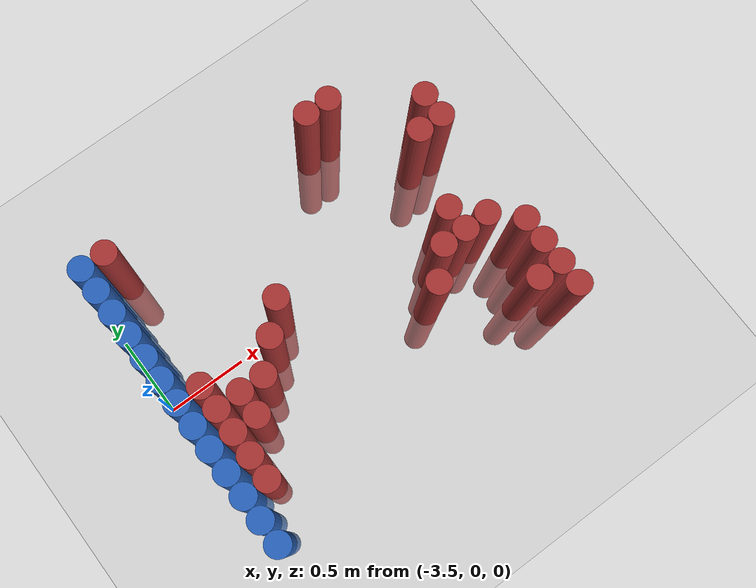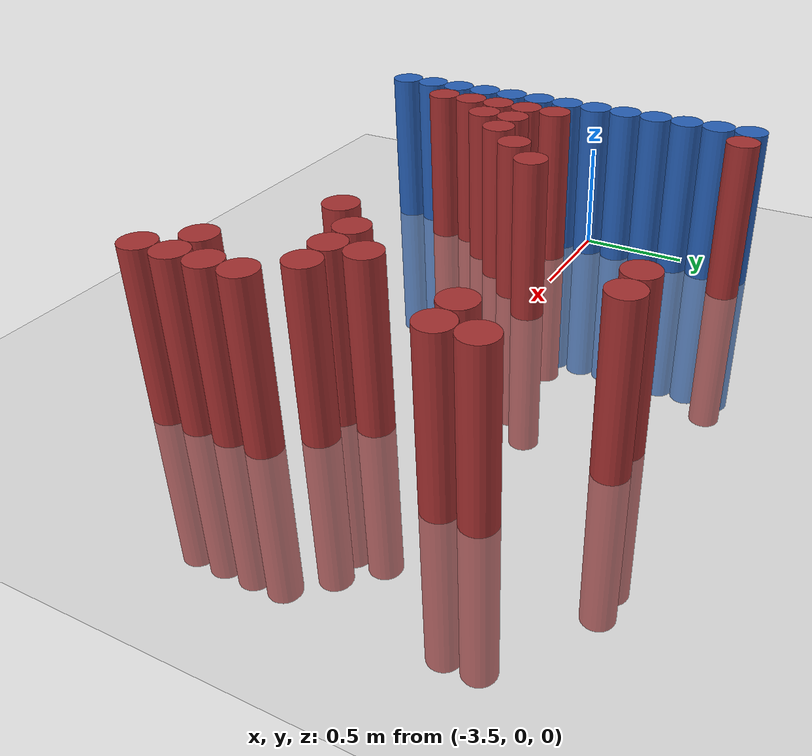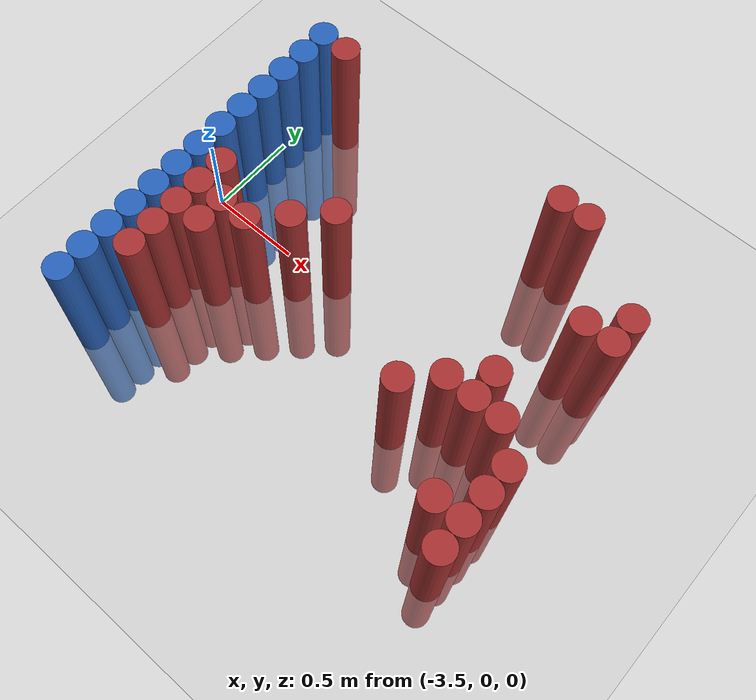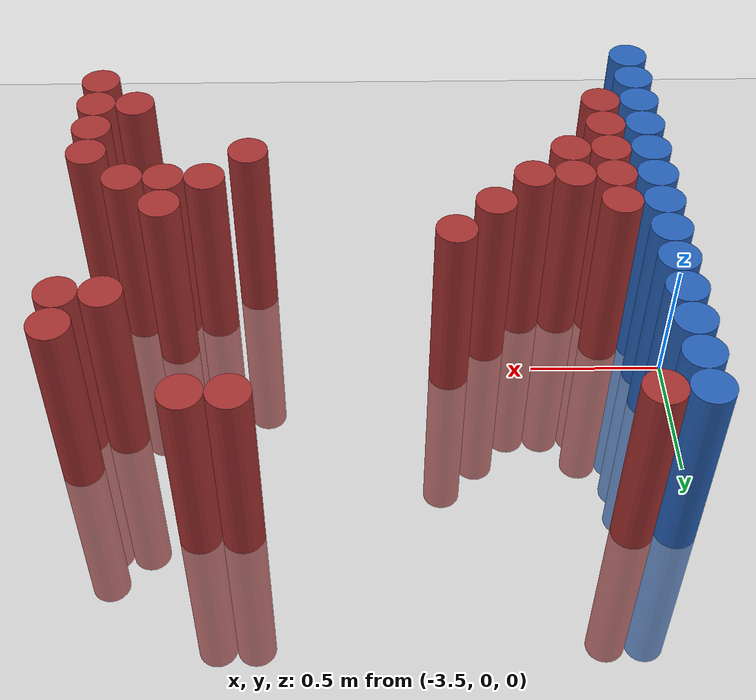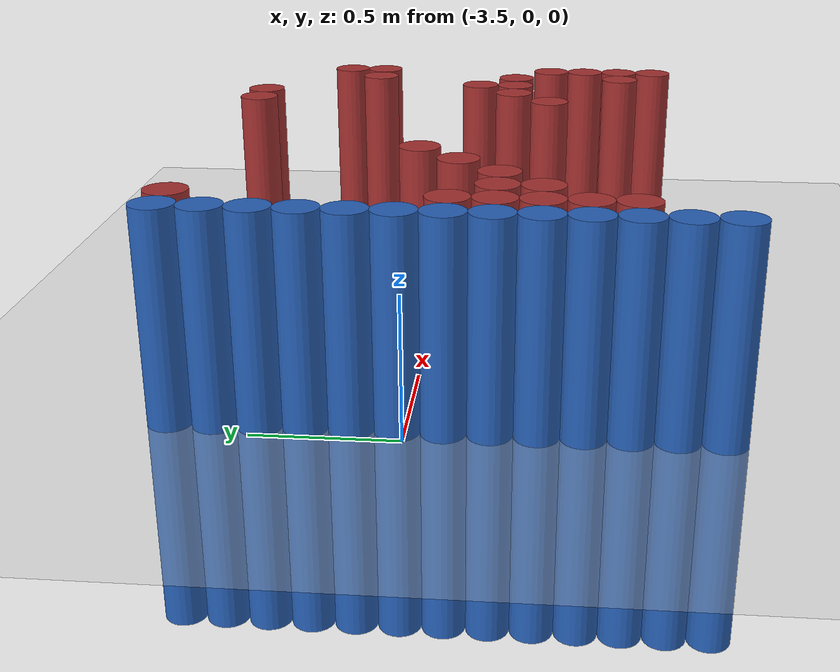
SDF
<sdf version="1.6">
 <world name="default">
  <model name="ground_plane">
   <static>1</static>
   <link name="link">
    <collision name="collision">
     <geometry><plane><normal>0 0 1</normal><size>100 100</size></plane></geometry>
     <surface><friction><ode><mu>100</mu><mu2>50</mu2></ode></friction></surface>
    </collision>
    <visual name="visual">
     <cast_shadows>0</cast_shadows>
     <geometry><plane><normal>0 0 1</normal><size>100 100</size></plane></geometry>
     <material>
      <script><uri>file://media/materials/scripts/gazebo.material</uri><name>Gazebo/Grey</name></script>
     </material>
    </visual>
   </link>
  </model>
  <model name="unit_cylinder_103">
   <static>1</static>
   <pose>-3.425000 -0.875000 0.000000 0.000000 0.000000 0.000000</pose>
   <link name="link">
    <inertial>
     <mass>1</mass>
     <inertia><ixx>0.145833</ixx><ixy>0</ixy><ixz>0</ixz><iyy>0.145833</iyy><iyz>0</iyz><izz>0.125</izz></inertia>
    </inertial>
    <collision name="collision">
     <geometry><cylinder><radius>0.075000</radius><length>1.5</length></cylinder></geometry>
    </collision>
    <visual name="visual">
     <geometry><cylinder><radius>0.075000</radius><length>1.5</length></cylinder></geometry>
     <material>
      <ambient>0.152000 0.379000 0.720000 1</ambient>
      <diffuse>0.152000 0.379000 0.720000 1</diffuse>
     </material>
     <material>
      <script><name>Gazebo/Grey</name><uri>file://media/materials/scripts/gazebo.material</uri></script>
     </material>
    </visual>
   </link>
  </model>
  <model name="unit_cylinder_105">
   <static>1</static>
   <pose>-3.425000 -0.725000 0.000000 0.000000 0.000000 0.000000</pose>
   <link name="link">
    <inertial>
     <mass>1</mass>
     <inertia><ixx>0.145833</ixx><ixy>0</ixy><ixz>0</ixz><iyy>0.145833</iyy><iyz>0</iyz><izz>0.125</izz></inertia>
    </inertial>
    <collision name="collision">
     <geometry><cylinder><radius>0.075000</radius><length>1.5</length></cylinder></geometry>
    </collision>
    <visual name="visual">
     <geometry><cylinder><radius>0.075000</radius><length>1.5</length></cylinder></geometry>
     <material>
      <ambient>0.152000 0.379000 0.720000 1</ambient>
      <diffuse>0.152000 0.379000 0.720000 1</diffuse>
     </material>
     <material>
      <script><name>Gazebo/Grey</name><uri>file://media/materials/scripts/gazebo.material</uri></script>
     </material>
    </visual>
   </link>
  </model>
  <model name="unit_cylinder_107">
   <static>1</static>
   <pose>-3.425000 -0.575000 0.000000 0.000000 0.000000 0.000000</pose>
   <link name="link">
    <inertial>
     <mass>1</mass>
     <inertia><ixx>0.145833</ixx><ixy>0</ixy><ixz>0</ixz><iyy>0.145833</iyy><iyz>0</iyz><izz>0.125</izz></inertia>
    </inertial>
    <collision name="collision">
     <geometry><cylinder><radius>0.075000</radius><length>1.5</length></cylinder></geometry>
    </collision>
    <visual name="visual">
     <geometry><cylinder><radius>0.075000</radius><length>1.5</length></cylinder></geometry>
     <material>
      <ambient>0.152000 0.379000 0.720000 1</ambient>
      <diffuse>0.152000 0.379000 0.720000 1</diffuse>
     </material>
     <material>
      <script><name>Gazebo/Grey</name><uri>file://media/materials/scripts/gazebo.material</uri></script>
     </material>
    </visual>
   </link>
  </model>
  <model name="unit_cylinder_109">
   <static>1</static>
   <pose>-3.425000 -0.425000 0.000000 0.000000 0.000000 0.000000</pose>
   <link name="link">
    <inertial>
     <mass>1</mass>
     <inertia><ixx>0.145833</ixx><ixy>0</ixy><ixz>0</ixz><iyy>0.145833</iyy><iyz>0</iyz><izz>0.125</izz></inertia>
    </inertial>
    <collision name="collision">
     <geometry><cylinder><radius>0.075000</radius><length>1.5</length></cylinder></geometry>
    </collision>
    <visual name="visual">
     <geometry><cylinder><radius>0.075000</radius><length>1.5</length></cylinder></geometry>
     <material>
      <ambient>0.152000 0.379000 0.720000 1</ambient>
      <diffuse>0.152000 0.379000 0.720000 1</diffuse>
     </material>
     <material>
      <script><name>Gazebo/Grey</name><uri>file://media/materials/scripts/gazebo.material</uri></script>
     </material>
    </visual>
   </link>
  </model>
  <model name="unit_cylinder_111">
   <static>1</static>
   <pose>-3.425000 -0.275000 0.000000 0.000000 0.000000 0.000000</pose>
   <link name="link">
    <inertial>
     <mass>1</mass>
     <inertia><ixx>0.145833</ixx><ixy>0</ixy><ixz>0</ixz><iyy>0.145833</iyy><iyz>0</iyz><izz>0.125</izz></inertia>
    </inertial>
    <collision name="collision">
     <geometry><cylinder><radius>0.075000</radius><length>1.5</length></cylinder></geometry>
    </collision>
    <visual name="visual">
     <geometry><cylinder><radius>0.075000</radius><length>1.5</length></cylinder></geometry>
     <material>
      <ambient>0.152000 0.379000 0.720000 1</ambient>
      <diffuse>0.152000 0.379000 0.720000 1</diffuse>
     </material>
     <material>
      <script><name>Gazebo/Grey</name><uri>file://media/materials/scripts/gazebo.material</uri></script>
     </material>
    </visual>
   </link>
  </model>
  <model name="unit_cylinder_113">
   <static>1</static>
   <pose>-3.425000 -0.125000 0.000000 0.000000 0.000000 0.000000</pose>
   <link name="link">
    <inertial>
     <mass>1</mass>
     <inertia><ixx>0.145833</ixx><ixy>0</ixy><ixz>0</ixz><iyy>0.145833</iyy><iyz>0</iyz><izz>0.125</izz></inertia>
    </inertial>
    <collision name="collision">
     <geometry><cylinder><radius>0.075000</radius><length>1.5</length></cylinder></geometry>
    </collision>
    <visual name="visual">
     <geometry><cylinder><radius>0.075000</radius><length>1.5</length></cylinder></geometry>
     <material>
      <ambient>0.152000 0.379000 0.720000 1</ambient>
      <diffuse>0.152000 0.379000 0.720000 1</diffuse>
     </material>
     <material>
      <script><name>Gazebo/Grey</name><uri>file://media/materials/scripts/gazebo.material</uri></script>
     </material>
    </visual>
   </link>
  </model>
  <model name="unit_cylinder_115">
   <static>1</static>
   <pose>-3.425000 0.025000 0.000000 0.000000 0.000000 0.000000</pose>
   <link name="link">
    <inertial>
     <mass>1</mass>
     <inertia><ixx>0.145833</ixx><ixy>0</ixy><ixz>0</ixz><iyy>0.145833</iyy><iyz>0</iyz><izz>0.125</izz></inertia>
    </inertial>
    <collision name="collision">
     <geometry><cylinder><radius>0.075000</radius><length>1.5</length></cylinder></geometry>
    </collision>
    <visual name="visual">
     <geometry><cylinder><radius>0.075000</radius><length>1.5</length></cylinder></geometry>
     <material>
      <ambient>0.152000 0.379000 0.720000 1</ambient>
      <diffuse>0.152000 0.379000 0.720000 1</diffuse>
     </material>
     <material>
      <script><name>Gazebo/Grey</name><uri>file://media/materials/scripts/gazebo.material</uri></script>
     </material>
    </visual>
   </link>
  </model>
  <model name="unit_cylinder_117">
   <static>1</static>
   <pose>-3.425000 0.175000 0.000000 0.000000 0.000000 0.000000</pose>
   <link name="link">
    <inertial>
     <mass>1</mass>
     <inertia><ixx>0.145833</ixx><ixy>0</ixy><ixz>0</ixz><iyy>0.145833</iyy><iyz>0</iyz><izz>0.125</izz></inertia>
    </inertial>
    <collision name="collision">
     <geometry><cylinder><radius>0.075000</radius><length>1.5</length></cylinder></geometry>
    </collision>
    <visual name="visual">
     <geometry><cylinder><radius>0.075000</radius><length>1.5</length></cylinder></geometry>
     <material>
      <ambient>0.152000 0.379000 0.720000 1</ambient>
      <diffuse>0.152000 0.379000 0.720000 1</diffuse>
     </material>
     <material>
      <script><name>Gazebo/Grey</name><uri>file://media/materials/scripts/gazebo.material</uri></script>
     </material>
    </visual>
   </link>
  </model>
  <model name="unit_cylinder_119">
   <static>1</static>
   <pose>-3.425000 0.325000 0.000000 0.000000 0.000000 0.000000</pose>
   <link name="link">
    <inertial>
     <mass>1</mass>
     <inertia><ixx>0.145833</ixx><ixy>0</ixy><ixz>0</ixz><iyy>0.145833</iyy><iyz>0</iyz><izz>0.125</izz></inertia>
    </inertial>
    <collision name="collision">
     <geometry><cylinder><radius>0.075000</radius><length>1.5</length></cylinder></geometry>
    </collision>
    <visual name="visual">
     <geometry><cylinder><radius>0.075000</radius><length>1.5</length></cylinder></geometry>
     <material>
      <ambient>0.152000 0.379000 0.720000 1</ambient>
      <diffuse>0.152000 0.379000 0.720000 1</diffuse>
     </material>
     <material>
      <script><name>Gazebo/Grey</name><uri>file://media/materials/scripts/gazebo.material</uri></script>
     </material>
    </visual>
   </link>
  </model>
  <model name="unit_cylinder_121">
   <static>1</static>
   <pose>-3.425000 0.475000 0.000000 0.000000 0.000000 0.000000</pose>
   <link name="link">
    <inertial>
     <mass>1</mass>
     <inertia><ixx>0.145833</ixx><ixy>0</ixy><ixz>0</ixz><iyy>0.145833</iyy><iyz>0</iyz><izz>0.125</izz></inertia>
    </inertial>
    <collision name="collision">
     <geometry><cylinder><radius>0.075000</radius><length>1.5</length></cylinder></geometry>
    </collision>
    <visual name="visual">
     <geometry><cylinder><radius>0.075000</radius><length>1.5</length></cylinder></geometry>
     <material>
      <ambient>0.152000 0.379000 0.720000 1</ambient>
      <diffuse>0.152000 0.379000 0.720000 1</diffuse>
     </material>
     <material>
      <script><name>Gazebo/Grey</name><uri>file://media/materials/scripts/gazebo.material</uri></script>
     </material>
    </visual>
   </link>
  </model>
  <model name="unit_cylinder_123">
   <static>1</static>
   <pose>-3.425000 0.625000 0.000000 0.000000 0.000000 0.000000</pose>
   <link name="link">
    <inertial>
     <mass>1</mass>
     <inertia><ixx>0.145833</ixx><ixy>0</ixy><ixz>0</ixz><iyy>0.145833</iyy><iyz>0</iyz><izz>0.125</izz></inertia>
    </inertial>
    <collision name="collision">
     <geometry><cylinder><radius>0.075000</radius><length>1.5</length></cylinder></geometry>
    </collision>
    <visual name="visual">
     <geometry><cylinder><radius>0.075000</radius><length>1.5</length></cylinder></geometry>
     <material>
      <ambient>0.152000 0.379000 0.720000 1</ambient>
      <diffuse>0.152000 0.379000 0.720000 1</diffuse>
     </material>
     <material>
      <script><name>Gazebo/Grey</name><uri>file://media/materials/scripts/gazebo.material</uri></script>
     </material>
    </visual>
   </link>
  </model>
  <model name="unit_cylinder_125">
   <static>1</static>
   <pose>-3.425000 0.775000 0.000000 0.000000 0.000000 0.000000</pose>
   <link name="link">
    <inertial>
     <mass>1</mass>
     <inertia><ixx>0.145833</ixx><ixy>0</ixy><ixz>0</ixz><iyy>0.145833</iyy><iyz>0</iyz><izz>0.125</izz></inertia>
    </inertial>
    <collision name="collision">
     <geometry><cylinder><radius>0.075000</radius><length>1.5</length></cylinder></geometry>
    </collision>
    <visual name="visual">
     <geometry><cylinder><radius>0.075000</radius><length>1.5</length></cylinder></geometry>
     <material>
      <ambient>0.152000 0.379000 0.720000 1</ambient>
      <diffuse>0.152000 0.379000 0.720000 1</diffuse>
     </material>
     <material>
      <script><name>Gazebo/Grey</name><uri>file://media/materials/scripts/gazebo.material</uri></script>
     </material>
    </visual>
   </link>
  </model>
  <model name="unit_cylinder_214">
   <static>1</static>
   <pose>-3.425000 -1.025000 0.000000 0.000000 0.000000 0.000000</pose>
   <link name="link">
    <inertial>
     <mass>1</mass>
     <inertia><ixx>0.145833</ixx><ixy>0</ixy><ixz>0</ixz><iyy>0.145833</iyy><iyz>0</iyz><izz>0.125</izz></inertia>
    </inertial>
    <collision name="collision">
     <geometry><cylinder><radius>0.075000</radius><length>1.5</length></cylinder></geometry>
    </collision>
    <visual name="visual">
     <geometry><cylinder><radius>0.075000</radius><length>1.5</length></cylinder></geometry>
     <material>
      <ambient>0.152000 0.379000 0.720000 1</ambient>
      <diffuse>0.152000 0.379000 0.720000 1</diffuse>
     </material>
     <material>
      <script><name>Gazebo/Grey</name><uri>file://media/materials/scripts/gazebo.material</uri></script>
     </material>
    </visual>
   </link>
  </model>
  <model name="unit_cylinder_215">
   <static>1</static>
   <pose>-3.425000 -0.875000 0.000000 0.000000 0.000000 0.000000</pose>
   <link name="link">
    <inertial>
     <mass>1</mass>
     <inertia><ixx>0.145833</ixx><ixy>0</ixy><ixz>0</ixz><iyy>0.145833</iyy><iyz>0</iyz><izz>0.125</izz></inertia>
    </inertial>
    <collision name="collision">
     <geometry><cylinder><radius>0.075000</radius><length>1.5</length></cylinder></geometry>
    </collision>
    <visual name="visual">
     <geometry><cylinder><radius>0.075000</radius><length>1.5</length></cylinder></geometry>
     <material>
      <ambient>0.152000 0.379000 0.720000 1</ambient>
      <diffuse>0.152000 0.379000 0.720000 1</diffuse>
     </material>
     <material>
      <script><name>Gazebo/Grey</name><uri>file://media/materials/scripts/gazebo.material</uri></script>
     </material>
    </visual>
   </link>
  </model>
  <model name="unit_cylinder_216">
   <static>1</static>
   <pose>-3.425000 -0.725000 0.000000 0.000000 0.000000 0.000000</pose>
   <link name="link">
    <inertial>
     <mass>1</mass>
     <inertia><ixx>0.145833</ixx><ixy>0</ixy><ixz>0</ixz><iyy>0.145833</iyy><iyz>0</iyz><izz>0.125</izz></inertia>
    </inertial>
    <collision name="collision">
     <geometry><cylinder><radius>0.075000</radius><length>1.5</length></cylinder></geometry>
    </collision>
    <visual name="visual">
     <geometry><cylinder><radius>0.075000</radius><length>1.5</length></cylinder></geometry>
     <material>
      <ambient>0.152000 0.379000 0.720000 1</ambient>
      <diffuse>0.152000 0.379000 0.720000 1</diffuse>
     </material>
     <material>
      <script><name>Gazebo/Grey</name><uri>file://media/materials/scripts/gazebo.material</uri></script>
     </material>
    </visual>
   </link>
  </model>
  <model name="unit_cylinder_217">
   <static>1</static>
   <pose>-3.425000 -0.575000 0.000000 0.000000 0.000000 0.000000</pose>
   <link name="link">
    <inertial>
     <mass>1</mass>
     <inertia><ixx>0.145833</ixx><ixy>0</ixy><ixz>0</ixz><iyy>0.145833</iyy><iyz>0</iyz><izz>0.125</izz></inertia>
    </inertial>
    <collision name="collision">
     <geometry><cylinder><radius>0.075000</radius><length>1.5</length></cylinder></geometry>
    </collision>
    <visual name="visual">
     <geometry><cylinder><radius>0.075000</radius><length>1.5</length></cylinder></geometry>
     <material>
      <ambient>0.152000 0.379000 0.720000 1</ambient>
      <diffuse>0.152000 0.379000 0.720000 1</diffuse>
     </material>
     <material>
      <script><name>Gazebo/Grey</name><uri>file://media/materials/scripts/gazebo.material</uri></script>
     </material>
    </visual>
   </link>
  </model>
  <model name="unit_cylinder_218">
   <static>1</static>
   <pose>-3.425000 -0.425000 0.000000 0.000000 0.000000 0.000000</pose>
   <link name="link">
    <inertial>
     <mass>1</mass>
     <inertia><ixx>0.145833</ixx><ixy>0</ixy><ixz>0</ixz><iyy>0.145833</iyy><iyz>0</iyz><izz>0.125</izz></inertia>
    </inertial>
    <collision name="collision">
     <geometry><cylinder><radius>0.075000</radius><length>1.5</length></cylinder></geometry>
    </collision>
    <visual name="visual">
     <geometry><cylinder><radius>0.075000</radius><length>1.5</length></cylinder></geometry>
     <material>
      <ambient>0.152000 0.379000 0.720000 1</ambient>
      <diffuse>0.152000 0.379000 0.720000 1</diffuse>
     </material>
     <material>
      <script><name>Gazebo/Grey</name><uri>file://media/materials/scripts/gazebo.material</uri></script>
     </material>
    </visual>
   </link>
  </model>
  <model name="unit_cylinder_219">
   <static>1</static>
   <pose>-3.425000 -0.275000 0.000000 0.000000 0.000000 0.000000</pose>
   <link name="link">
    <inertial>
     <mass>1</mass>
     <inertia><ixx>0.145833</ixx><ixy>0</ixy><ixz>0</ixz><iyy>0.145833</iyy><iyz>0</iyz><izz>0.125</izz></inertia>
    </inertial>
    <collision name="collision">
     <geometry><cylinder><radius>0.075000</radius><length>1.5</length></cylinder></geometry>
    </collision>
    <visual name="visual">
     <geometry><cylinder><radius>0.075000</radius><length>1.5</length></cylinder></geometry>
     <material>
      <ambient>0.152000 0.379000 0.720000 1</ambient>
      <diffuse>0.152000 0.379000 0.720000 1</diffuse>
     </material>
     <material>
      <script><name>Gazebo/Grey</name><uri>file://media/materials/scripts/gazebo.material</uri></script>
     </material>
    </visual>
   </link>
  </model>
  <model name="unit_cylinder_220">
   <static>1</static>
   <pose>-3.425000 -0.125000 0.000000 0.000000 0.000000 0.000000</pose>
   <link name="link">
    <inertial>
     <mass>1</mass>
     <inertia><ixx>0.145833</ixx><ixy>0</ixy><ixz>0</ixz><iyy>0.145833</iyy><iyz>0</iyz><izz>0.125</izz></inertia>
    </inertial>
    <collision name="collision">
     <geometry><cylinder><radius>0.075000</radius><length>1.5</length></cylinder></geometry>
    </collision>
    <visual name="visual">
     <geometry><cylinder><radius>0.075000</radius><length>1.5</length></cylinder></geometry>
     <material>
      <ambient>0.152000 0.379000 0.720000 1</ambient>
      <diffuse>0.152000 0.379000 0.720000 1</diffuse>
     </material>
     <material>
      <script><name>Gazebo/Grey</name><uri>file://media/materials/scripts/gazebo.material</uri></script>
     </material>
    </visual>
   </link>
  </model>
  <model name="unit_cylinder_221">
   <static>1</static>
   <pose>-3.425000 0.025000 0.000000 0.000000 0.000000 0.000000</pose>
   <link name="link">
    <inertial>
     <mass>1</mass>
     <inertia><ixx>0.145833</ixx><ixy>0</ixy><ixz>0</ixz><iyy>0.145833</iyy><iyz>0</iyz><izz>0.125</izz></inertia>
    </inertial>
    <collision name="collision">
     <geometry><cylinder><radius>0.075000</radius><length>1.5</length></cylinder></geometry>
    </collision>
    <visual name="visual">
     <geometry><cylinder><radius>0.075000</radius><length>1.5</length></cylinder></geometry>
     <material>
      <ambient>0.152000 0.379000 0.720000 1</ambient>
      <diffuse>0.152000 0.379000 0.720000 1</diffuse>
     </material>
     <material>
      <script><name>Gazebo/Grey</name><uri>file://media/materials/scripts/gazebo.material</uri></script>
     </material>
    </visual>
   </link>
  </model>
  <model name="unit_cylinder_222">
   <static>1</static>
   <pose>-3.425000 0.175000 0.000000 0.000000 0.000000 0.000000</pose>
   <link name="link">
    <inertial>
     <mass>1</mass>
     <inertia><ixx>0.145833</ixx><ixy>0</ixy><ixz>0</ixz><iyy>0.145833</iyy><iyz>0</iyz><izz>0.125</izz></inertia>
    </inertial>
    <collision name="collision">
     <geometry><cylinder><radius>0.075000</radius><length>1.5</length></cylinder></geometry>
    </collision>
    <visual name="visual">
     <geometry><cylinder><radius>0.075000</radius><length>1.5</length></cylinder></geometry>
     <material>
      <ambient>0.152000 0.379000 0.720000 1</ambient>
      <diffuse>0.152000 0.379000 0.720000 1</diffuse>
     </material>
     <material>
      <script><name>Gazebo/Grey</name><uri>file://media/materials/scripts/gazebo.material</uri></script>
     </material>
    </visual>
   </link>
  </model>
  <model name="unit_cylinder_223">
   <static>1</static>
   <pose>-3.425000 0.325000 0.000000 0.000000 0.000000 0.000000</pose>
   <link name="link">
    <inertial>
     <mass>1</mass>
     <inertia><ixx>0.145833</ixx><ixy>0</ixy><ixz>0</ixz><iyy>0.145833</iyy><iyz>0</iyz><izz>0.125</izz></inertia>
    </inertial>
    <collision name="collision">
     <geometry><cylinder><radius>0.075000</radius><length>1.5</length></cylinder></geometry>
    </collision>
    <visual name="visual">
     <geometry><cylinder><radius>0.075000</radius><length>1.5</length></cylinder></geometry>
     <material>
      <ambient>0.152000 0.379000 0.720000 1</ambient>
      <diffuse>0.152000 0.379000 0.720000 1</diffuse>
     </material>
     <material>
      <script><name>Gazebo/Grey</name><uri>file://media/materials/scripts/gazebo.material</uri></script>
     </material>
    </visual>
   </link>
  </model>
  <model name="unit_cylinder_224">
   <static>1</static>
   <pose>-3.425000 0.475000 0.000000 0.000000 0.000000 0.000000</pose>
   <link name="link">
    <inertial>
     <mass>1</mass>
     <inertia><ixx>0.145833</ixx><ixy>0</ixy><ixz>0</ixz><iyy>0.145833</iyy><iyz>0</iyz><izz>0.125</izz></inertia>
    </inertial>
    <collision name="collision">
     <geometry><cylinder><radius>0.075000</radius><length>1.5</length></cylinder></geometry>
    </collision>
    <visual name="visual">
     <geometry><cylinder><radius>0.075000</radius><length>1.5</length></cylinder></geometry>
     <material>
      <ambient>0.152000 0.379000 0.720000 1</ambient>
      <diffuse>0.152000 0.379000 0.720000 1</diffuse>
     </material>
     <material>
      <script><name>Gazebo/Grey</name><uri>file://media/materials/scripts/gazebo.material</uri></script>
     </material>
    </visual>
   </link>
  </model>
  <model name="unit_cylinder_225">
   <static>1</static>
   <pose>-3.425000 0.625000 0.000000 0.000000 0.000000 0.000000</pose>
   <link name="link">
    <inertial>
     <mass>1</mass>
     <inertia><ixx>0.145833</ixx><ixy>0</ixy><ixz>0</ixz><iyy>0.145833</iyy><iyz>0</iyz><izz>0.125</izz></inertia>
    </inertial>
    <collision name="collision">
     <geometry><cylinder><radius>0.075000</radius><length>1.5</length></cylinder></geometry>
    </collision>
    <visual name="visual">
     <geometry><cylinder><radius>0.075000</radius><length>1.5</length></cylinder></geometry>
     <material>
      <ambient>0.152000 0.379000 0.720000 1</ambient>
      <diffuse>0.152000 0.379000 0.720000 1</diffuse>
     </material>
     <material>
      <script><name>Gazebo/Grey</name><uri>file://media/materials/scripts/gazebo.material</uri></script>
     </material>
    </visual>
   </link>
  </model>
  <model name="unit_cylinder_226">
   <static>1</static>
   <pose>-3.425000 0.775000 0.000000 0.000000 0.000000 0.000000</pose>
   <link name="link">
    <inertial>
     <mass>1</mass>
     <inertia><ixx>0.145833</ixx><ixy>0</ixy><ixz>0</ixz><iyy>0.145833</iyy><iyz>0</iyz><izz>0.125</izz></inertia>
    </inertial>
    <collision name="collision">
     <geometry><cylinder><radius>0.075000</radius><length>1.5</length></cylinder></geometry>
    </collision>
    <visual name="visual">
     <geometry><cylinder><radius>0.075000</radius><length>1.5</length></cylinder></geometry>
     <material>
      <ambient>0.152000 0.379000 0.720000 1</ambient>
      <diffuse>0.152000 0.379000 0.720000 1</diffuse>
     </material>
     <material>
      <script><name>Gazebo/Grey</name><uri>file://media/materials/scripts/gazebo.material</uri></script>
     </material>
    </visual>
   </link>
  </model>
  <model name="unit_cylinder_258">
   <static>1</static>
   <pose>-3.275000 -0.725000 0.000000 0.000000 0.000000 0.000000</pose>
   <link name="link">
    <inertial>
     <mass>1</mass>
     <inertia><ixx>0.145833</ixx><ixy>0</ixy><ixz>0</ixz><iyy>0.145833</iyy><iyz>0</iyz><izz>0.125</izz></inertia>
    </inertial>
    <collision name="collision">
     <geometry><cylinder><radius>0.075000</radius><length>1.5</length></cylinder></geometry>
    </collision>
    <visual name="visual">
     <geometry><cylinder><radius>0.075000</radius><length>1.5</length></cylinder></geometry>
     <material>
      <ambient>0.648000 0.192000 0.192000 1</ambient>
      <diffuse>0.648000 0.192000 0.192000 1</diffuse>
     </material>
     <material>
      <script><name>Gazebo/Grey</name><uri>file://media/materials/scripts/gazebo.material</uri></script>
     </material>
    </visual>
   </link>
  </model>
  <model name="unit_cylinder_259">
   <static>1</static>
   <pose>-3.275000 -0.575000 0.000000 0.000000 0.000000 0.000000</pose>
   <link name="link">
    <inertial>
     <mass>1</mass>
     <inertia><ixx>0.145833</ixx><ixy>0</ixy><ixz>0</ixz><iyy>0.145833</iyy><iyz>0</iyz><izz>0.125</izz></inertia>
    </inertial>
    <collision name="collision">
     <geometry><cylinder><radius>0.075000</radius><length>1.5</length></cylinder></geometry>
    </collision>
    <visual name="visual">
     <geometry><cylinder><radius>0.075000</radius><length>1.5</length></cylinder></geometry>
     <material>
      <ambient>0.648000 0.192000 0.192000 1</ambient>
      <diffuse>0.648000 0.192000 0.192000 1</diffuse>
     </material>
     <material>
      <script><name>Gazebo/Grey</name><uri>file://media/materials/scripts/gazebo.material</uri></script>
     </material>
    </visual>
   </link>
  </model>
  <model name="unit_cylinder_260">
   <static>1</static>
   <pose>-3.275000 -0.425000 0.000000 0.000000 0.000000 0.000000</pose>
   <link name="link">
    <inertial>
     <mass>1</mass>
     <inertia><ixx>0.145833</ixx><ixy>0</ixy><ixz>0</ixz><iyy>0.145833</iyy><iyz>0</iyz><izz>0.125</izz></inertia>
    </inertial>
    <collision name="collision">
     <geometry><cylinder><radius>0.075000</radius><length>1.5</length></cylinder></geometry>
    </collision>
    <visual name="visual">
     <geometry><cylinder><radius>0.075000</radius><length>1.5</length></cylinder></geometry>
     <material>
      <ambient>0.648000 0.192000 0.192000 1</ambient>
      <diffuse>0.648000 0.192000 0.192000 1</diffuse>
     </material>
     <material>
      <script><name>Gazebo/Grey</name><uri>file://media/materials/scripts/gazebo.material</uri></script>
     </material>
    </visual>
   </link>
  </model>
  <model name="unit_cylinder_261">
   <static>1</static>
   <pose>-3.275000 -0.275000 0.000000 0.000000 0.000000 0.000000</pose>
   <link name="link">
    <inertial>
     <mass>1</mass>
     <inertia><ixx>0.145833</ixx><ixy>0</ixy><ixz>0</ixz><iyy>0.145833</iyy><iyz>0</iyz><izz>0.125</izz></inertia>
    </inertial>
    <collision name="collision">
     <geometry><cylinder><radius>0.075000</radius><length>1.5</length></cylinder></geometry>
    </collision>
    <visual name="visual">
     <geometry><cylinder><radius>0.075000</radius><length>1.5</length></cylinder></geometry>
     <material>
      <ambient>0.648000 0.192000 0.192000 1</ambient>
      <diffuse>0.648000 0.192000 0.192000 1</diffuse>
     </material>
     <material>
      <script><name>Gazebo/Grey</name><uri>file://media/materials/scripts/gazebo.material</uri></script>
     </material>
    </visual>
   </link>
  </model>
  <model name="unit_cylinder_262">
   <static>1</static>
   <pose>-3.275000 -0.125000 0.000000 0.000000 0.000000 0.000000</pose>
   <link name="link">
    <inertial>
     <mass>1</mass>
     <inertia><ixx>0.145833</ixx><ixy>0</ixy><ixz>0</ixz><iyy>0.145833</iyy><iyz>0</iyz><izz>0.125</izz></inertia>
    </inertial>
    <collision name="collision">
     <geometry><cylinder><radius>0.075000</radius><length>1.5</length></cylinder></geometry>
    </collision>
    <visual name="visual">
     <geometry><cylinder><radius>0.075000</radius><length>1.5</length></cylinder></geometry>
     <material>
      <ambient>0.648000 0.192000 0.192000 1</ambient>
      <diffuse>0.648000 0.192000 0.192000 1</diffuse>
     </material>
     <material>
      <script><name>Gazebo/Grey</name><uri>file://media/materials/scripts/gazebo.material</uri></script>
     </material>
    </visual>
   </link>
  </model>
  <model name="unit_cylinder_263">
   <static>1</static>
   <pose>-3.275000 0.775000 0.000000 0.000000 0.000000 0.000000</pose>
   <link name="link">
    <inertial>
     <mass>1</mass>
     <inertia><ixx>0.145833</ixx><ixy>0</ixy><ixz>0</ixz><iyy>0.145833</iyy><iyz>0</iyz><izz>0.125</izz></inertia>
    </inertial>
    <collision name="collision">
     <geometry><cylinder><radius>0.075000</radius><length>1.5</length></cylinder></geometry>
    </collision>
    <visual name="visual">
     <geometry><cylinder><radius>0.075000</radius><length>1.5</length></cylinder></geometry>
     <material>
      <ambient>0.648000 0.192000 0.192000 1</ambient>
      <diffuse>0.648000 0.192000 0.192000 1</diffuse>
     </material>
     <material>
      <script><name>Gazebo/Grey</name><uri>file://media/materials/scripts/gazebo.material</uri></script>
     </material>
    </visual>
   </link>
  </model>
  <model name="unit_cylinder_278">
   <static>1</static>
   <pose>-3.125000 -0.425000 0.000000 0.000000 0.000000 0.000000</pose>
   <link name="link">
    <inertial>
     <mass>1</mass>
     <inertia><ixx>0.145833</ixx><ixy>0</ixy><ixz>0</ixz><iyy>0.145833</iyy><iyz>0</iyz><izz>0.125</izz></inertia>
    </inertial>
    <collision name="collision">
     <geometry><cylinder><radius>0.075000</radius><length>1.5</length></cylinder></geometry>
    </collision>
    <visual name="visual">
     <geometry><cylinder><radius>0.075000</radius><length>1.5</length></cylinder></geometry>
     <material>
      <ambient>0.648000 0.192000 0.192000 1</ambient>
      <diffuse>0.648000 0.192000 0.192000 1</diffuse>
     </material>
     <material>
      <script><name>Gazebo/Grey</name><uri>file://media/materials/scripts/gazebo.material</uri></script>
     </material>
    </visual>
   </link>
  </model>
  <model name="unit_cylinder_279">
   <static>1</static>
   <pose>-3.125000 -0.275000 0.000000 0.000000 0.000000 0.000000</pose>
   <link name="link">
    <inertial>
     <mass>1</mass>
     <inertia><ixx>0.145833</ixx><ixy>0</ixy><ixz>0</ixz><iyy>0.145833</iyy><iyz>0</iyz><izz>0.125</izz></inertia>
    </inertial>
    <collision name="collision">
     <geometry><cylinder><radius>0.075000</radius><length>1.5</length></cylinder></geometry>
    </collision>
    <visual name="visual">
     <geometry><cylinder><radius>0.075000</radius><length>1.5</length></cylinder></geometry>
     <material>
      <ambient>0.648000 0.192000 0.192000 1</ambient>
      <diffuse>0.648000 0.192000 0.192000 1</diffuse>
     </material>
     <material>
      <script><name>Gazebo/Grey</name><uri>file://media/materials/scripts/gazebo.material</uri></script>
     </material>
    </visual>
   </link>
  </model>
  <model name="unit_cylinder_287">
   <static>1</static>
   <pose>-2.975000 -0.275000 0.000000 0.000000 0.000000 0.000000</pose>
   <link name="link">
    <inertial>
     <mass>1</mass>
     <inertia><ixx>0.145833</ixx><ixy>0</ixy><ixz>0</ixz><iyy>0.145833</iyy><iyz>0</iyz><izz>0.125</izz></inertia>
    </inertial>
    <collision name="collision">
     <geometry><cylinder><radius>0.075000</radius><length>1.5</length></cylinder></geometry>
    </collision>
    <visual name="visual">
     <geometry><cylinder><radius>0.075000</radius><length>1.5</length></cylinder></geometry>
     <material>
      <ambient>0.648000 0.192000 0.192000 1</ambient>
      <diffuse>0.648000 0.192000 0.192000 1</diffuse>
     </material>
     <material>
      <script><name>Gazebo/Grey</name><uri>file://media/materials/scripts/gazebo.material</uri></script>
     </material>
    </visual>
   </link>
  </model>
  <model name="unit_cylinder_296">
   <static>1</static>
   <pose>-2.825000 -0.125000 0.000000 0.000000 0.000000 0.000000</pose>
   <link name="link">
    <inertial>
     <mass>1</mass>
     <inertia><ixx>0.145833</ixx><ixy>0</ixy><ixz>0</ixz><iyy>0.145833</iyy><iyz>0</iyz><izz>0.125</izz></inertia>
    </inertial>
    <collision name="collision">
     <geometry><cylinder><radius>0.075000</radius><length>1.5</length></cylinder></geometry>
    </collision>
    <visual name="visual">
     <geometry><cylinder><radius>0.075000</radius><length>1.5</length></cylinder></geometry>
     <material>
      <ambient>0.648000 0.192000 0.192000 1</ambient>
      <diffuse>0.648000 0.192000 0.192000 1</diffuse>
     </material>
     <material>
      <script><name>Gazebo/Grey</name><uri>file://media/materials/scripts/gazebo.material</uri></script>
     </material>
    </visual>
   </link>
  </model>
  <model name="unit_cylinder_305">
   <static>1</static>
   <pose>-2.675000 0.025000 0.000000 0.000000 0.000000 0.000000</pose>
   <link name="link">
    <inertial>
     <mass>1</mass>
     <inertia><ixx>0.145833</ixx><ixy>0</ixy><ixz>0</ixz><iyy>0.145833</iyy><iyz>0</iyz><izz>0.125</izz></inertia>
    </inertial>
    <collision name="collision">
     <geometry><cylinder><radius>0.075000</radius><length>1.5</length></cylinder></geometry>
    </collision>
    <visual name="visual">
     <geometry><cylinder><radius>0.075000</radius><length>1.5</length></cylinder></geometry>
     <material>
      <ambient>0.648000 0.192000 0.192000 1</ambient>
      <diffuse>0.648000 0.192000 0.192000 1</diffuse>
     </material>
     <material>
      <script><name>Gazebo/Grey</name><uri>file://media/materials/scripts/gazebo.material</uri></script>
     </material>
    </visual>
   </link>
  </model>
  <model name="unit_cylinder_330">
   <static>1</static>
   <pose>-1.925000 -0.425000 0.000000 0.000000 0.000000 0.000000</pose>
   <link name="link">
    <inertial>
     <mass>1</mass>
     <inertia><ixx>0.145833</ixx><ixy>0</ixy><ixz>0</ixz><iyy>0.145833</iyy><iyz>0</iyz><izz>0.125</izz></inertia>
    </inertial>
    <collision name="collision">
     <geometry><cylinder><radius>0.075000</radius><length>1.5</length></cylinder></geometry>
    </collision>
    <visual name="visual">
     <geometry><cylinder><radius>0.075000</radius><length>1.5</length></cylinder></geometry>
     <material>
      <ambient>0.648000 0.192000 0.192000 1</ambient>
      <diffuse>0.648000 0.192000 0.192000 1</diffuse>
     </material>
     <material>
      <script><name>Gazebo/Grey</name><uri>file://media/materials/scripts/gazebo.material</uri></script>
     </material>
    </visual>
   </link>
  </model>
  <model name="unit_cylinder_331">
   <static>1</static>
   <pose>-1.925000 0.775000 0.000000 0.000000 0.000000 0.000000</pose>
   <link name="link">
    <inertial>
     <mass>1</mass>
     <inertia><ixx>0.145833</ixx><ixy>0</ixy><ixz>0</ixz><iyy>0.145833</iyy><iyz>0</iyz><izz>0.125</izz></inertia>
    </inertial>
    <collision name="collision">
     <geometry><cylinder><radius>0.075000</radius><length>1.5</length></cylinder></geometry>
    </collision>
    <visual name="visual">
     <geometry><cylinder><radius>0.075000</radius><length>1.5</length></cylinder></geometry>
     <material>
      <ambient>0.648000 0.192000 0.192000 1</ambient>
      <diffuse>0.648000 0.192000 0.192000 1</diffuse>
     </material>
     <material>
      <script><name>Gazebo/Grey</name><uri>file://media/materials/scripts/gazebo.material</uri></script>
     </material>
    </visual>
   </link>
  </model>
  <model name="unit_cylinder_333">
   <static>1</static>
   <pose>-1.775000 -0.275000 0.000000 0.000000 0.000000 0.000000</pose>
   <link name="link">
    <inertial>
     <mass>1</mass>
     <inertia><ixx>0.145833</ixx><ixy>0</ixy><ixz>0</ixz><iyy>0.145833</iyy><iyz>0</iyz><izz>0.125</izz></inertia>
    </inertial>
    <collision name="collision">
     <geometry><cylinder><radius>0.075000</radius><length>1.5</length></cylinder></geometry>
    </collision>
    <visual name="visual">
     <geometry><cylinder><radius>0.075000</radius><length>1.5</length></cylinder></geometry>
     <material>
      <ambient>0.648000 0.192000 0.192000 1</ambient>
      <diffuse>0.648000 0.192000 0.192000 1</diffuse>
     </material>
     <material>
      <script><name>Gazebo/Grey</name><uri>file://media/materials/scripts/gazebo.material</uri></script>
     </material>
    </visual>
   </link>
  </model>
  <model name="unit_cylinder_334">
   <static>1</static>
   <pose>-1.775000 0.775000 0.000000 0.000000 0.000000 0.000000</pose>
   <link name="link">
    <inertial>
     <mass>1</mass>
     <inertia><ixx>0.145833</ixx><ixy>0</ixy><ixz>0</ixz><iyy>0.145833</iyy><iyz>0</iyz><izz>0.125</izz></inertia>
    </inertial>
    <collision name="collision">
     <geometry><cylinder><radius>0.075000</radius><length>1.5</length></cylinder></geometry>
    </collision>
    <visual name="visual">
     <geometry><cylinder><radius>0.075000</radius><length>1.5</length></cylinder></geometry>
     <material>
      <ambient>0.648000 0.192000 0.192000 1</ambient>
      <diffuse>0.648000 0.192000 0.192000 1</diffuse>
     </material>
     <material>
      <script><name>Gazebo/Grey</name><uri>file://media/materials/scripts/gazebo.material</uri></script>
     </material>
    </visual>
   </link>
  </model>
  <model name="unit_cylinder_336">
   <static>1</static>
   <pose>-1.625000 -0.275000 0.000000 0.000000 0.000000 0.000000</pose>
   <link name="link">
    <inertial>
     <mass>1</mass>
     <inertia><ixx>0.145833</ixx><ixy>0</ixy><ixz>0</ixz><iyy>0.145833</iyy><iyz>0</iyz><izz>0.125</izz></inertia>
    </inertial>
    <collision name="collision">
     <geometry><cylinder><radius>0.075000</radius><length>1.5</length></cylinder></geometry>
    </collision>
    <visual name="visual">
     <geometry><cylinder><radius>0.075000</radius><length>1.5</length></cylinder></geometry>
     <material>
      <ambient>0.648000 0.192000 0.192000 1</ambient>
      <diffuse>0.648000 0.192000 0.192000 1</diffuse>
     </material>
     <material>
      <script><name>Gazebo/Grey</name><uri>file://media/materials/scripts/gazebo.material</uri></script>
     </material>
    </visual>
   </link>
  </model>
  <model name="unit_cylinder_337">
   <static>1</static>
   <pose>-1.625000 -0.125000 0.000000 0.000000 0.000000 0.000000</pose>
   <link name="link">
    <inertial>
     <mass>1</mass>
     <inertia><ixx>0.145833</ixx><ixy>0</ixy><ixz>0</ixz><iyy>0.145833</iyy><iyz>0</iyz><izz>0.125</izz></inertia>
    </inertial>
    <collision name="collision">
     <geometry><cylinder><radius>0.075000</radius><length>1.5</length></cylinder></geometry>
    </collision>
    <visual name="visual">
     <geometry><cylinder><radius>0.075000</radius><length>1.5</length></cylinder></geometry>
     <material>
      <ambient>0.648000 0.192000 0.192000 1</ambient>
      <diffuse>0.648000 0.192000 0.192000 1</diffuse>
     </material>
     <material>
      <script><name>Gazebo/Grey</name><uri>file://media/materials/scripts/gazebo.material</uri></script>
     </material>
    </visual>
   </link>
  </model>
  <model name="unit_cylinder_340">
   <static>1</static>
   <pose>-1.475000 -0.725000 0.000000 0.000000 0.000000 0.000000</pose>
   <link name="link">
    <inertial>
     <mass>1</mass>
     <inertia><ixx>0.145833</ixx><ixy>0</ixy><ixz>0</ixz><iyy>0.145833</iyy><iyz>0</iyz><izz>0.125</izz></inertia>
    </inertial>
    <collision name="collision">
     <geometry><cylinder><radius>0.075000</radius><length>1.5</length></cylinder></geometry>
    </collision>
    <visual name="visual">
     <geometry><cylinder><radius>0.075000</radius><length>1.5</length></cylinder></geometry>
     <material>
      <ambient>0.648000 0.192000 0.192000 1</ambient>
      <diffuse>0.648000 0.192000 0.192000 1</diffuse>
     </material>
     <material>
      <script><name>Gazebo/Grey</name><uri>file://media/materials/scripts/gazebo.material</uri></script>
     </material>
    </visual>
   </link>
  </model>
  <model name="unit_cylinder_341">
   <static>1</static>
   <pose>-1.475000 -0.275000 0.000000 0.000000 0.000000 0.000000</pose>
   <link name="link">
    <inertial>
     <mass>1</mass>
     <inertia><ixx>0.145833</ixx><ixy>0</ixy><ixz>0</ixz><iyy>0.145833</iyy><iyz>0</iyz><izz>0.125</izz></inertia>
    </inertial>
    <collision name="collision">
     <geometry><cylinder><radius>0.075000</radius><length>1.5</length></cylinder></geometry>
    </collision>
    <visual name="visual">
     <geometry><cylinder><radius>0.075000</radius><length>1.5</length></cylinder></geometry>
     <material>
      <ambient>0.648000 0.192000 0.192000 1</ambient>
      <diffuse>0.648000 0.192000 0.192000 1</diffuse>
     </material>
     <material>
      <script><name>Gazebo/Grey</name><uri>file://media/materials/scripts/gazebo.material</uri></script>
     </material>
    </visual>
   </link>
  </model>
  <model name="unit_cylinder_342">
   <static>1</static>
   <pose>-1.475000 0.325000 0.000000 0.000000 0.000000 0.000000</pose>
   <link name="link">
    <inertial>
     <mass>1</mass>
     <inertia><ixx>0.145833</ixx><ixy>0</ixy><ixz>0</ixz><iyy>0.145833</iyy><iyz>0</iyz><izz>0.125</izz></inertia>
    </inertial>
    <collision name="collision">
     <geometry><cylinder><radius>0.075000</radius><length>1.5</length></cylinder></geometry>
    </collision>
    <visual name="visual">
     <geometry><cylinder><radius>0.075000</radius><length>1.5</length></cylinder></geometry>
     <material>
      <ambient>0.648000 0.192000 0.192000 1</ambient>
      <diffuse>0.648000 0.192000 0.192000 1</diffuse>
     </material>
     <material>
      <script><name>Gazebo/Grey</name><uri>file://media/materials/scripts/gazebo.material</uri></script>
     </material>
    </visual>
   </link>
  </model>
  <model name="unit_cylinder_343">
   <static>1</static>
   <pose>-1.325000 -0.875000 0.000000 0.000000 0.000000 0.000000</pose>
   <link name="link">
    <inertial>
     <mass>1</mass>
     <inertia><ixx>0.145833</ixx><ixy>0</ixy><ixz>0</ixz><iyy>0.145833</iyy><iyz>0</iyz><izz>0.125</izz></inertia>
    </inertial>
    <collision name="collision">
     <geometry><cylinder><radius>0.075000</radius><length>1.5</length></cylinder></geometry>
    </collision>
    <visual name="visual">
     <geometry><cylinder><radius>0.075000</radius><length>1.5</length></cylinder></geometry>
     <material>
      <ambient>0.648000 0.192000 0.192000 1</ambient>
      <diffuse>0.648000 0.192000 0.192000 1</diffuse>
     </material>
     <material>
      <script><name>Gazebo/Grey</name><uri>file://media/materials/scripts/gazebo.material</uri></script>
     </material>
    </visual>
   </link>
  </model>
  <model name="unit_cylinder_344">
   <static>1</static>
   <pose>-1.325000 -0.725000 0.000000 0.000000 0.000000 0.000000</pose>
   <link name="link">
    <inertial>
     <mass>1</mass>
     <inertia><ixx>0.145833</ixx><ixy>0</ixy><ixz>0</ixz><iyy>0.145833</iyy><iyz>0</iyz><izz>0.125</izz></inertia>
    </inertial>
    <collision name="collision">
     <geometry><cylinder><radius>0.075000</radius><length>1.5</length></cylinder></geometry>
    </collision>
    <visual name="visual">
     <geometry><cylinder><radius>0.075000</radius><length>1.5</length></cylinder></geometry>
     <material>
      <ambient>0.648000 0.192000 0.192000 1</ambient>
      <diffuse>0.648000 0.192000 0.192000 1</diffuse>
     </material>
     <material>
      <script><name>Gazebo/Grey</name><uri>file://media/materials/scripts/gazebo.material</uri></script>
     </material>
    </visual>
   </link>
  </model>
  <model name="unit_cylinder_345">
   <static>1</static>
   <pose>-1.325000 -0.575000 0.000000 0.000000 0.000000 0.000000</pose>
   <link name="link">
    <inertial>
     <mass>1</mass>
     <inertia><ixx>0.145833</ixx><ixy>0</ixy><ixz>0</ixz><iyy>0.145833</iyy><iyz>0</iyz><izz>0.125</izz></inertia>
    </inertial>
    <collision name="collision">
     <geometry><cylinder><radius>0.075000</radius><length>1.5</length></cylinder></geometry>
    </collision>
    <visual name="visual">
     <geometry><cylinder><radius>0.075000</radius><length>1.5</length></cylinder></geometry>
     <material>
      <ambient>0.648000 0.192000 0.192000 1</ambient>
      <diffuse>0.648000 0.192000 0.192000 1</diffuse>
     </material>
     <material>
      <script><name>Gazebo/Grey</name><uri>file://media/materials/scripts/gazebo.material</uri></script>
     </material>
    </visual>
   </link>
  </model>
  <model name="unit_cylinder_346">
   <static>1</static>
   <pose>-1.325000 -0.425000 0.000000 0.000000 0.000000 0.000000</pose>
   <link name="link">
    <inertial>
     <mass>1</mass>
     <inertia><ixx>0.145833</ixx><ixy>0</ixy><ixz>0</ixz><iyy>0.145833</iyy><iyz>0</iyz><izz>0.125</izz></inertia>
    </inertial>
    <collision name="collision">
     <geometry><cylinder><radius>0.075000</radius><length>1.5</length></cylinder></geometry>
    </collision>
    <visual name="visual">
     <geometry><cylinder><radius>0.075000</radius><length>1.5</length></cylinder></geometry>
     <material>
      <ambient>0.648000 0.192000 0.192000 1</ambient>
      <diffuse>0.648000 0.192000 0.192000 1</diffuse>
     </material>
     <material>
      <script><name>Gazebo/Grey</name><uri>file://media/materials/scripts/gazebo.material</uri></script>
     </material>
    </visual>
   </link>
  </model>
  <model name="unit_cylinder_347">
   <static>1</static>
   <pose>-1.325000 0.325000 0.000000 0.000000 0.000000 0.000000</pose>
   <link name="link">
    <inertial>
     <mass>1</mass>
     <inertia><ixx>0.145833</ixx><ixy>0</ixy><ixz>0</ixz><iyy>0.145833</iyy><iyz>0</iyz><izz>0.125</izz></inertia>
    </inertial>
    <collision name="collision">
     <geometry><cylinder><radius>0.075000</radius><length>1.5</length></cylinder></geometry>
    </collision>
    <visual name="visual">
     <geometry><cylinder><radius>0.075000</radius><length>1.5</length></cylinder></geometry>
     <material>
      <ambient>0.648000 0.192000 0.192000 1</ambient>
      <diffuse>0.648000 0.192000 0.192000 1</diffuse>
     </material>
     <material>
      <script><name>Gazebo/Grey</name><uri>file://media/materials/scripts/gazebo.material</uri></script>
     </material>
    </visual>
   </link>
  </model>
  <model name="unit_cylinder_348">
   <static>1</static>
   <pose>-1.325000 0.475000 0.000000 0.000000 0.000000 0.000000</pose>
   <link name="link">
    <inertial>
     <mass>1</mass>
     <inertia><ixx>0.145833</ixx><ixy>0</ixy><ixz>0</ixz><iyy>0.145833</iyy><iyz>0</iyz><izz>0.125</izz></inertia>
    </inertial>
    <collision name="collision">
     <geometry><cylinder><radius>0.075000</radius><length>1.5</length></cylinder></geometry>
    </collision>
    <visual name="visual">
     <geometry><cylinder><radius>0.075000</radius><length>1.5</length></cylinder></geometry>
     <material>
      <ambient>0.648000 0.192000 0.192000 1</ambient>
      <diffuse>0.648000 0.192000 0.192000 1</diffuse>
     </material>
     <material>
      <script><name>Gazebo/Grey</name><uri>file://media/materials/scripts/gazebo.material</uri></script>
     </material>
    </visual>
   </link>
  </model>
 </world>
</sdf>
